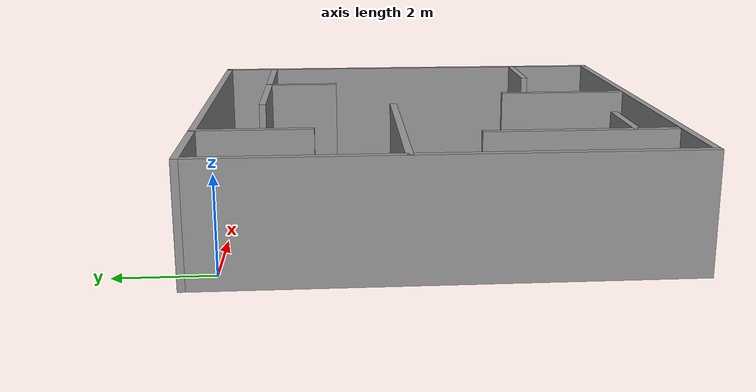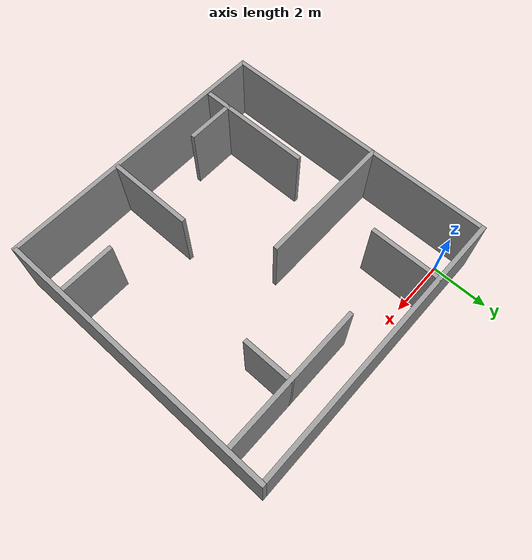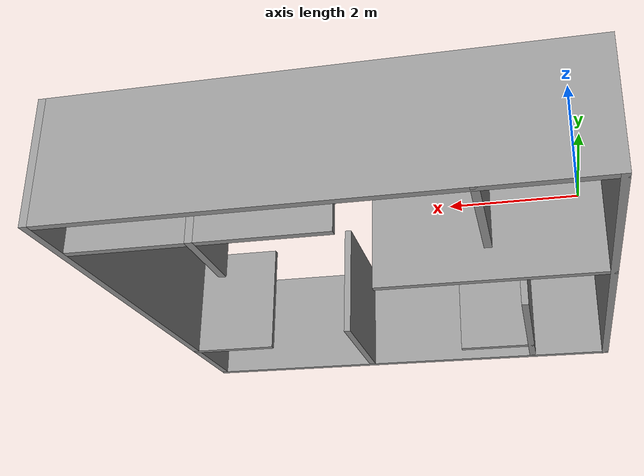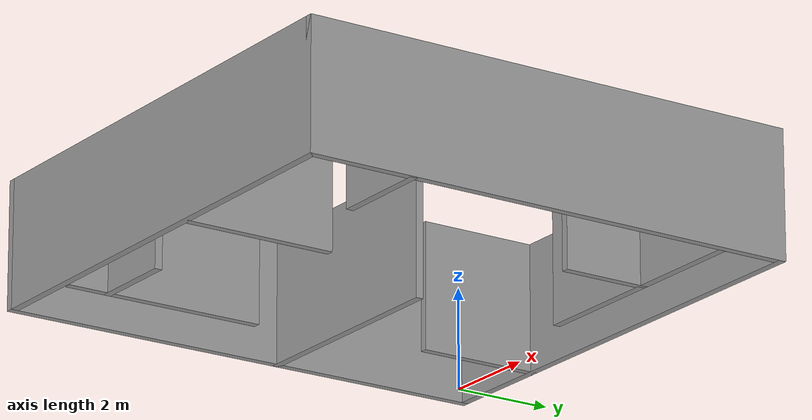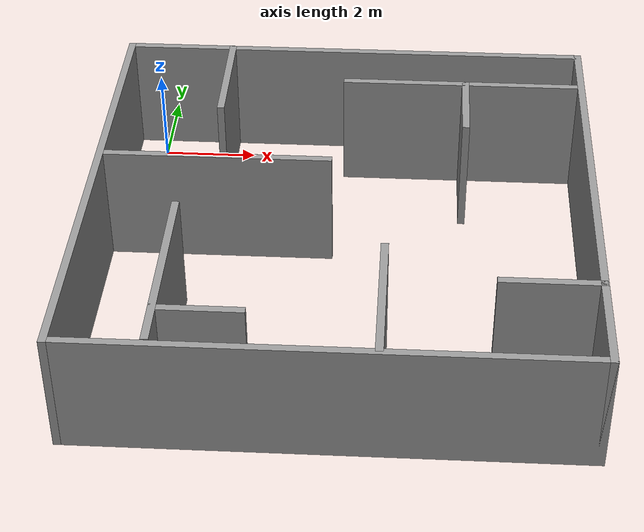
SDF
<?xml version='1.0'?>
<sdf version='1.7'>
  <model name='simulation_map'>
    <pose>-5.42884 -2.50331 0 0 -0 0</pose>
    <link name='Wall_10'>
      <collision name='Wall_10_Collision'>
        <geometry>
          <box>
            <size>10 0.15 2.5</size>
          </box>
        </geometry>
        <pose>0 0 1.25 0 -0 0</pose>
      </collision>
      <visual name='Wall_10_Visual'>
        <pose>0 0 1.25 0 -0 0</pose>
        <geometry>
          <box>
            <size>10 0.15 2.5</size>
          </box>
        </geometry>
        <material>
          <script>
            <uri>file://media/materials/scripts/gazebo.material</uri>
            <name>Gazebo/Grey</name>
          </script>
          <ambient>1 1 1 1</ambient>
        </material>
        <meta>
          <layer>0</layer>
        </meta>
      </visual>
      <pose>4.73006 -1.84726 0 0 -0 -1.5708</pose>
    </link>
    <link name='Wall_11'>
      <collision name='Wall_11_Collision'>
        <geometry>
          <box>
            <size>10 0.15 2.5</size>
          </box>
        </geometry>
        <pose>0 0 1.25 0 -0 0</pose>
      </collision>
      <visual name='Wall_11_Visual'>
        <pose>0 0 1.25 0 -0 0</pose>
        <geometry>
          <box>
            <size>10 0.15 2.5</size>
          </box>
        </geometry>
        <material>
          <script>
            <uri>file://media/materials/scripts/gazebo.material</uri>
            <name>Gazebo/Grey</name>
          </script>
          <ambient>1 1 1 1</ambient>
        </material>
        <meta>
          <layer>0</layer>
        </meta>
      </visual>
      <pose>9.65506 -6.77226 0 0 -0 0</pose>
    </link>
    <link name='Wall_12'>
      <collision name='Wall_12_Collision'>
        <geometry>
          <box>
            <size>10 0.15 2.5</size>
          </box>
        </geometry>
        <pose>0 0 1.25 0 -0 0</pose>
      </collision>
      <visual name='Wall_12_Visual'>
        <pose>0 0 1.25 0 -0 0</pose>
        <geometry>
          <box>
            <size>10 0.15 2.5</size>
          </box>
        </geometry>
        <material>
          <script>
            <uri>file://media/materials/scripts/gazebo.material</uri>
            <name>Gazebo/Grey</name>
          </script>
          <ambient>1 1 1 1</ambient>
        </material>
        <meta>
          <layer>0</layer>
        </meta>
      </visual>
      <pose>14.5801 -1.84726 0 0 -0 1.5708</pose>
    </link>
    <link name='Wall_15'>
      <collision name='Wall_15_Collision'>
        <geometry>
          <box>
            <size>2.5 0.15 2.5</size>
          </box>
        </geometry>
        <pose>0 0 1.25 0 -0 0</pose>
      </collision>
      <visual name='Wall_15_Visual'>
        <pose>0 0 1.25 0 -0 0</pose>
        <geometry>
          <box>
            <size>2.5 0.15 2.5</size>
          </box>
        </geometry>
        <material>
          <script>
            <uri>file://media/materials/scripts/gazebo.material</uri>
            <name>Gazebo/Grey</name>
          </script>
          <ambient>1 1 1 1</ambient>
        </material>
        <meta>
          <layer>0</layer>
        </meta>
      </visual>
      <pose>6.97844 1.89962 0 0 -0 -1.5708</pose>
    </link>
    <link name='Wall_17'>
      <collision name='Wall_17_Collision'>
        <geometry>
          <box>
            <size>4.75 0.15 2.5</size>
          </box>
        </geometry>
        <pose>0 0 1.25 0 -0 0</pose>
      </collision>
      <visual name='Wall_17_Visual'>
        <pose>0 0 1.25 0 -0 0</pose>
        <geometry>
          <box>
            <size>4.75 0.15 2.5</size>
          </box>
        </geometry>
        <material>
          <script>
            <uri>file://media/materials/scripts/gazebo.material</uri>
            <name>Gazebo/Grey</name>
          </script>
          <ambient>1 1 1 1</ambient>
        </material>
        <meta>
          <layer>0</layer>
        </meta>
      </visual>
      <pose>7.04583 -1.08889 0 0 -0 0</pose>
    </link>
    <link name='Wall_31'>
      <collision name='Wall_31_Collision'>
        <geometry>
          <box>
            <size>5 0.15 2.5</size>
          </box>
        </geometry>
        <pose>0 0 1.25 0 -0 0</pose>
      </collision>
      <visual name='Wall_31_Visual'>
        <pose>0 0 1.25 0 -0 0</pose>
        <geometry>
          <box>
            <size>5 0.15 2.5</size>
          </box>
        </geometry>
        <material>
          <script>
            <uri>file://media/materials/scripts/gazebo.material</uri>
            <name>Gazebo/Grey</name>
          </script>
          <ambient>1 1 1 1</ambient>
        </material>
        <meta>
          <layer>0</layer>
        </meta>
      </visual>
      <pose>12.0072 1.85822 0 0 -0 0</pose>
    </link>
    <link name='Wall_33'>
      <collision name='Wall_33_Collision'>
        <geometry>
          <box>
            <size>1.75 0.15 2.5</size>
          </box>
        </geometry>
        <pose>0 0 1.25 0 -0 0</pose>
      </collision>
      <visual name='Wall_33_Visual'>
        <pose>0 0 1.25 0 -0 0</pose>
        <geometry>
          <box>
            <size>1.75 0.15 2.5</size>
          </box>
        </geometry>
        <material>
          <script>
            <uri>file://media/materials/scripts/gazebo.material</uri>
            <name>Gazebo/Grey</name>
          </script>
          <ambient>1 1 1 1</ambient>
        </material>
        <meta>
          <layer>0</layer>
        </meta>
      </visual>
      <pose>12.1151 1.05822 0 0 -0 -1.5708</pose>
    </link>
    <link name='Wall_35'>
      <collision name='Wall_35_Collision'>
        <geometry>
          <box>
            <size>4 0.15 2.5</size>
          </box>
        </geometry>
        <pose>0 0 1.25 0 -0 0</pose>
      </collision>
      <visual name='Wall_35_Visual'>
        <pose>0 0 1.25 0 -0 0</pose>
        <geometry>
          <box>
            <size>4 0.15 2.5</size>
          </box>
        </geometry>
        <material>
          <script>
            <uri>file://media/materials/scripts/gazebo.material</uri>
            <name>Gazebo/Grey</name>
          </script>
          <ambient>1 1 1 1</ambient>
        </material>
        <meta>
          <layer>0</layer>
        </meta>
      </visual>
      <pose>6.48649 -4.6752 0 0 -0 -1.5708</pose>
    </link>
    <link name='Wall_37'>
      <collision name='Wall_37_Collision'>
        <geometry>
          <box>
            <size>1.75 0.15 2.5</size>
          </box>
        </geometry>
        <pose>0 0 1.25 0 -0 0</pose>
      </collision>
      <visual name='Wall_37_Visual'>
        <pose>0 0 1.25 0 -0 0</pose>
        <geometry>
          <box>
            <size>1.75 0.15 2.5</size>
          </box>
        </geometry>
        <material>
          <script>
            <uri>file://media/materials/scripts/gazebo.material</uri>
            <name>Gazebo/Grey</name>
          </script>
          <ambient>1 1 1 1</ambient>
        </material>
        <meta>
          <layer>0</layer>
        </meta>
      </visual>
      <pose>7.28649 -5.81075 0 0 -0 0</pose>
    </link>
    <link name='Wall_39'>
      <collision name='Wall_39_Collision'>
        <geometry>
          <box>
            <size>3 0.15 2.5</size>
          </box>
        </geometry>
        <pose>0 0 1.25 0 -0 0</pose>
      </collision>
      <visual name='Wall_39_Visual'>
        <pose>0 0 1.25 0 -0 0</pose>
        <geometry>
          <box>
            <size>3 0.15 2.5</size>
          </box>
        </geometry>
        <material>
          <script>
            <uri>file://media/materials/scripts/gazebo.material</uri>
            <name>Gazebo/Grey</name>
          </script>
          <ambient>1 1 1 1</ambient>
        </material>
        <meta>
          <layer>0</layer>
        </meta>
      </visual>
      <pose>10.5672 -5.26574 0 0 -0 -1.5708</pose>
    </link>
    <link name='Wall_41'>
      <collision name='Wall_41_Collision'>
        <geometry>
          <box>
            <size>2 0.15 2.5</size>
          </box>
        </geometry>
        <pose>0 0 1.25 0 -0 0</pose>
      </collision>
      <visual name='Wall_41_Visual'>
        <pose>0 0 1.25 0 -0 0</pose>
        <geometry>
          <box>
            <size>2 0.15 2.5</size>
          </box>
        </geometry>
        <material>
          <script>
            <uri>file://media/materials/scripts/gazebo.material</uri>
            <name>Gazebo/Grey</name>
          </script>
          <ambient>1 1 1 1</ambient>
        </material>
        <meta>
          <layer>0</layer>
        </meta>
      </visual>
      <pose>13.6381 -4.72021 0 0 -0 0</pose>
    </link>
    <link name='Wall_8'>
      <collision name='Wall_8_Collision'>
        <geometry>
          <box>
            <size>10 0.15 2.5</size>
          </box>
        </geometry>
        <pose>0 0 1.25 0 -0 0</pose>
      </collision>
      <visual name='Wall_8_Visual'>
        <pose>0 0 1.25 0 -0 0</pose>
        <geometry>
          <box>
            <size>10 0.15 2.5</size>
          </box>
        </geometry>
        <material>
          <script>
            <uri>file://media/materials/scripts/gazebo.material</uri>
            <name>Gazebo/Grey</name>
          </script>
          <ambient>1 1 1 1</ambient>
        </material>
        <meta>
          <layer>0</layer>
        </meta>
      </visual>
      <pose>9.65506 3.07774 0 0 -0 3.14159</pose>
    </link>
    <static>1</static>
  </model>
</sdf>
